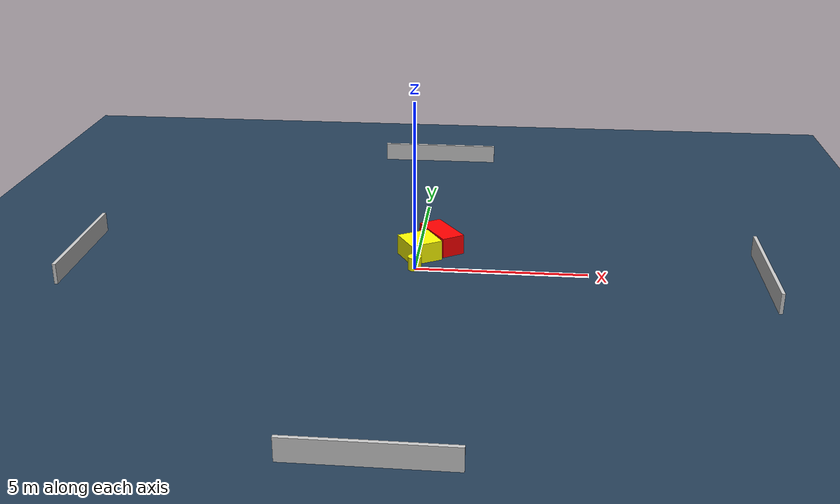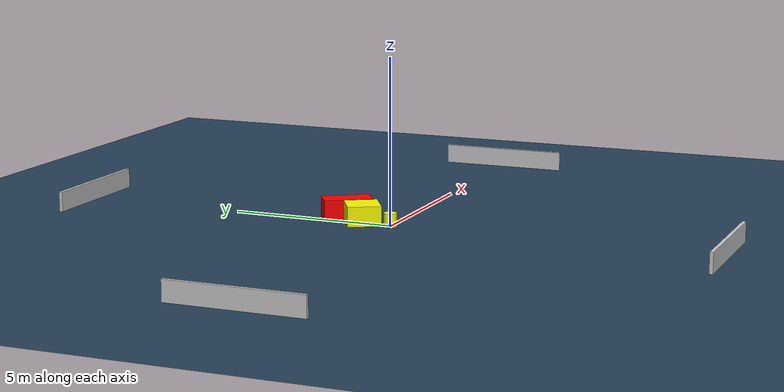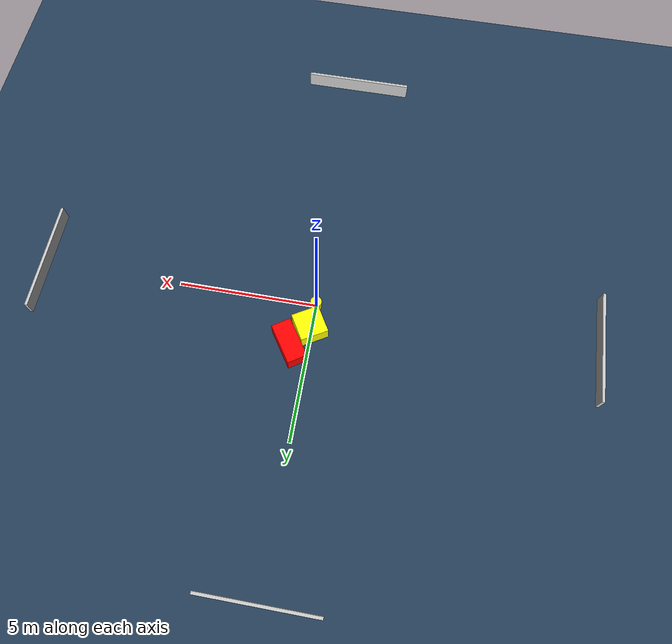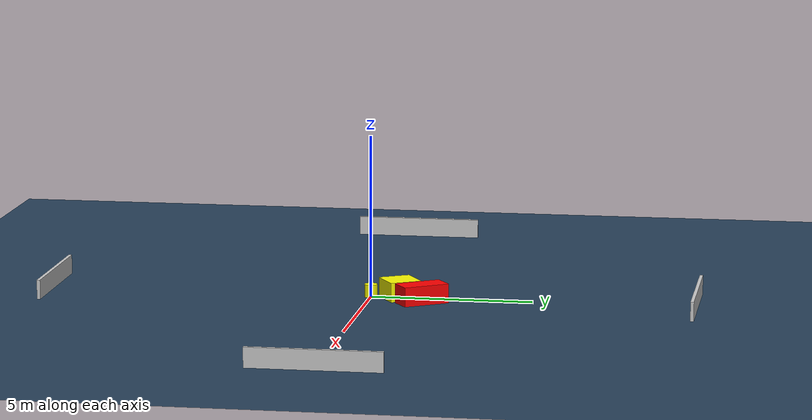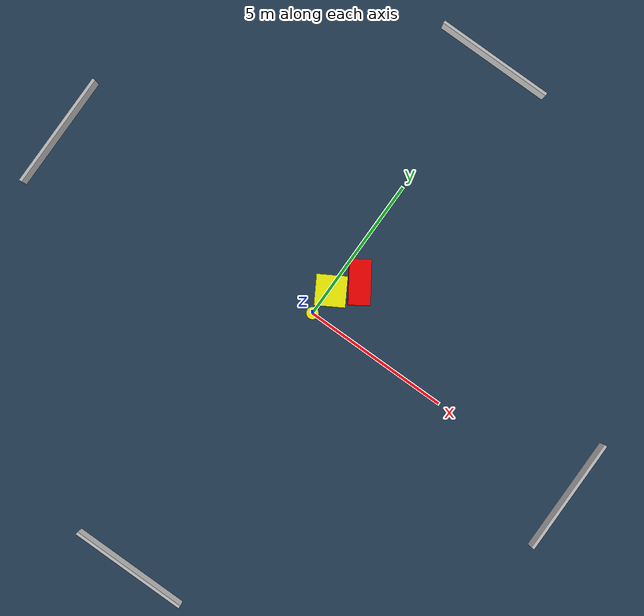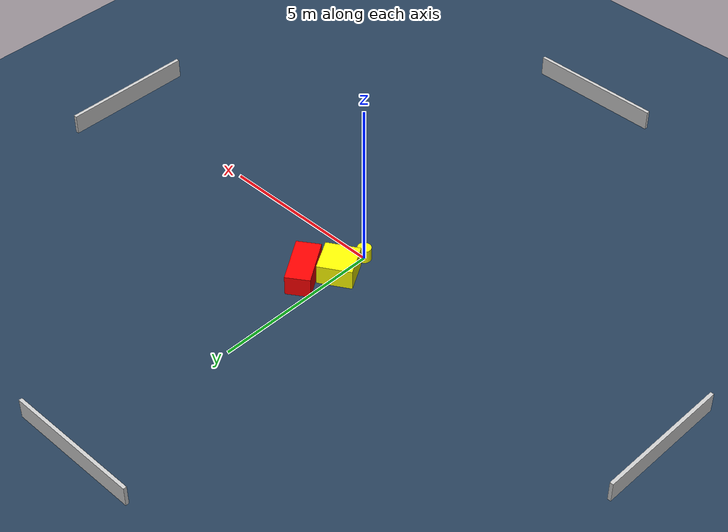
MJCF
<?xml version="1.0" ?>
<mujoco model="generated_environment">
  <option timestep="0.01" integrator="RK4" cone="elliptic"/>
  <default>
    <geom density="1"/>
  </default>
  <asset>
    <texture builtin="gradient" height="3072" name="skybox" rgb1="0.3 0.5 0.7" rgb2="0 0 0" type="skybox" width="512"/>
    <texture builtin="checker" height="300" name="groundplane" rgb1="0.2 0.3 0.4" rgb2="0.1 0.2 0.3" type="2d" width="300"/>
    <material name="groundplane" reflectance="0.2" texrepeat="5 5" texture="groundplane"/>
  </asset>
  <worldbody>
    <light dir="0 0 -1" directional="true" pos="0 0 1.5"/>
    <geom condim="3" friction="0.5 0.005 0.001" material="groundplane" name="floor" pos="0 0 0" size="0 0 0.05" type="plane"/>
    <body name="walls">
      <geom name="wall_1" condim="4" pos="-10.0 0.0 0.3" rgba="0.800000011920929 0.800000011920929 0.800000011920929 1.0" size="0.05 2.0 0.3" type="box"/>
      <geom name="wall_2" condim="4" pos="10.0 0.0 0.3" rgba="0.800000011920929 0.800000011920929 0.800000011920929 1.0" size="0.05 2.0 0.3" type="box"/>
      <geom name="wall_3" condim="4" pos="0.0 -10.0 0.3" rgba="0.800000011920929 0.800000011920929 0.800000011920929 1.0" size="2.0 0.05 0.3" type="box"/>
      <geom name="wall_4" condim="4" pos="0.0 10.0 0.3" rgba="0.800000011920929 0.800000011920929 0.800000011920929 1.0" size="2.0 0.05 0.3" type="box"/>
    </body>
    <body name="robot">
      <joint name="joint_x" type="slide" pos="0 0 0" axis="1 0 0"/>
      <joint name="joint_y" type="slide" pos="0 0 0" axis="0 1 0"/>
      <geom name="robot" type="cylinder" pos="0.0 0.0 0.2" size="0.2 0.2 0.0" mass="5.0" friction="1.0 0.005 0.0001" condim="4" rgba="1.0 1.0 0.0 1.0"/>
    </body>
    <body name="obstacle_1_movable">
      <geom name="obstacle_1_movable" condim="4" pos="0.06166260350084883 0.9162234948622923 0.3" euler="0 0 30.58063183594614" friction="0.0 0.005 0.001" rgba="1.0 1.0 0.0 1.0" size="0.49909575573722165 0.499231062695701 0.3" type="box" mass="0.1"/>
      <joint type="free"/>
    </body>
    <body name="obstacle_2_static">
      <geom name="obstacle_2_static" condim="4" pos="0.6502247296439252 1.677845155576852 0.3" euler="0 0 123.70315760595162" friction="0.0 0.005 0.001" rgba="1.0 0.0 0.0 1.0" size="0.7356103165463668 0.3550617507713366 0.3" type="box"/>
    </body>
  </worldbody>
  <actuator>
    <motor name="actuator_x" joint="joint_x" gear="1" ctrlrange="-1 1"/>
    <motor name="actuator_y" joint="joint_y" gear="1" ctrlrange="-1 1"/>
  </actuator>
</mujoco>
